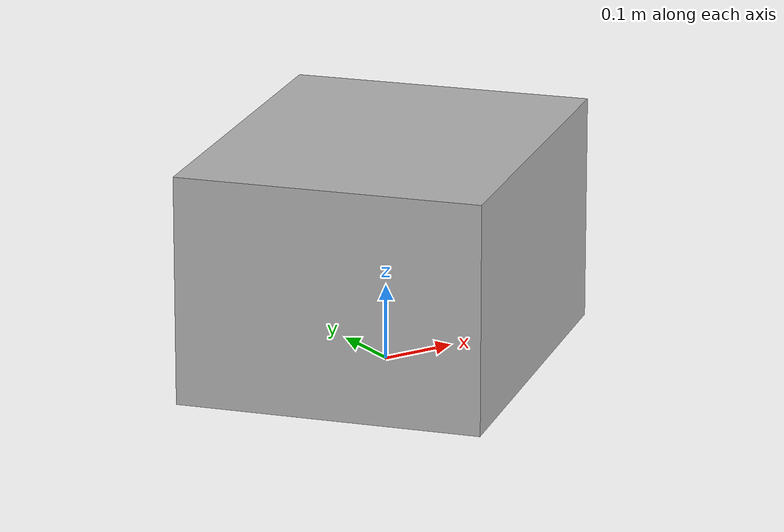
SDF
<?xml version="1.0" ?>
<sdf version="1.6">
  <model name="office_box">
    <static>true</static>
    <link name="link">
      <pose>0 0 0.15 0 0 0.7</pose>
      <collision name="collision">
        <geometry>
          <box>
            <size>0.5 0.4 0.3</size>
          </box>
        </geometry>
      </collision>
      <visual name="visual">
        <pose>0 0 -0.15 0 0 0</pose>
        <geometry>
          <mesh>
            <uri>model://office_box/meshes/office_box.dae</uri>
            <scale>1.25931896 1.007455168 0.755591376</scale>
          </mesh>
        </geometry>
      </visual>
    </link>
  </model>
</sdf>
